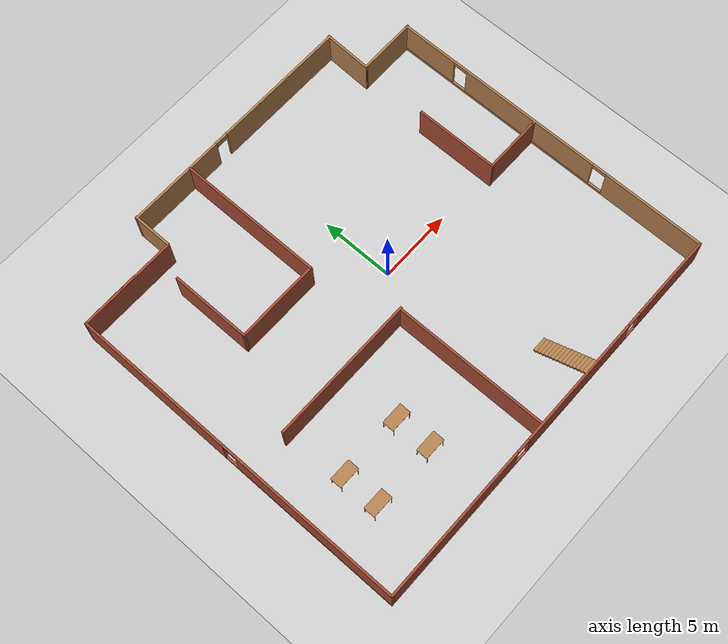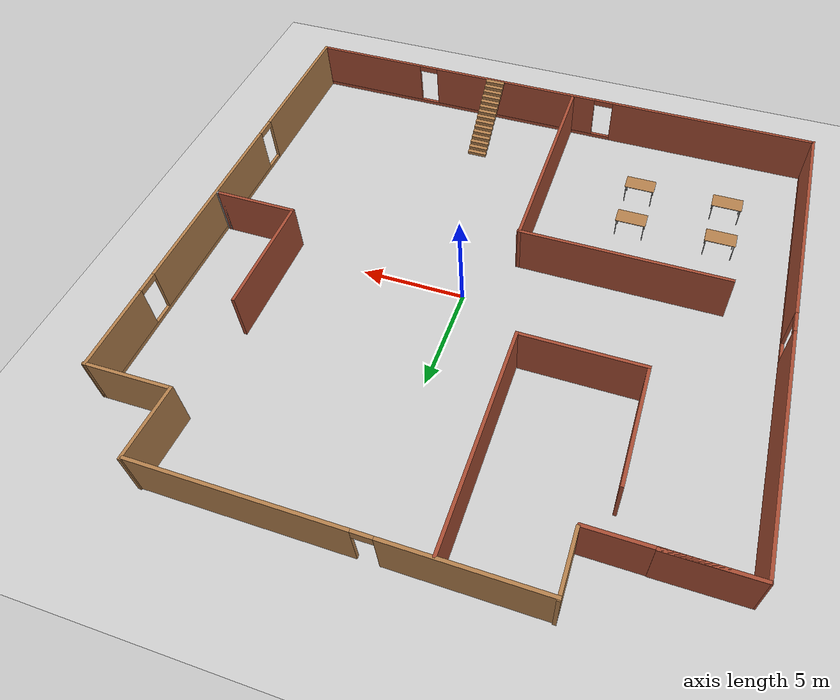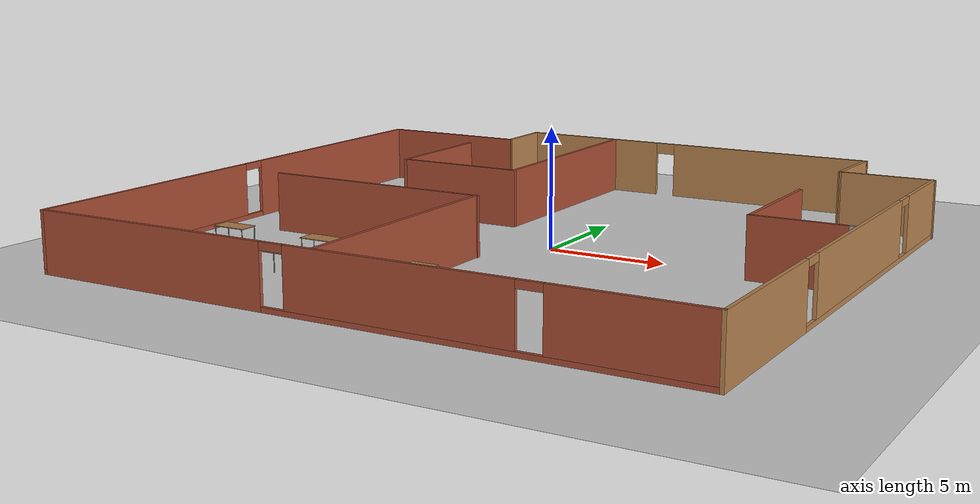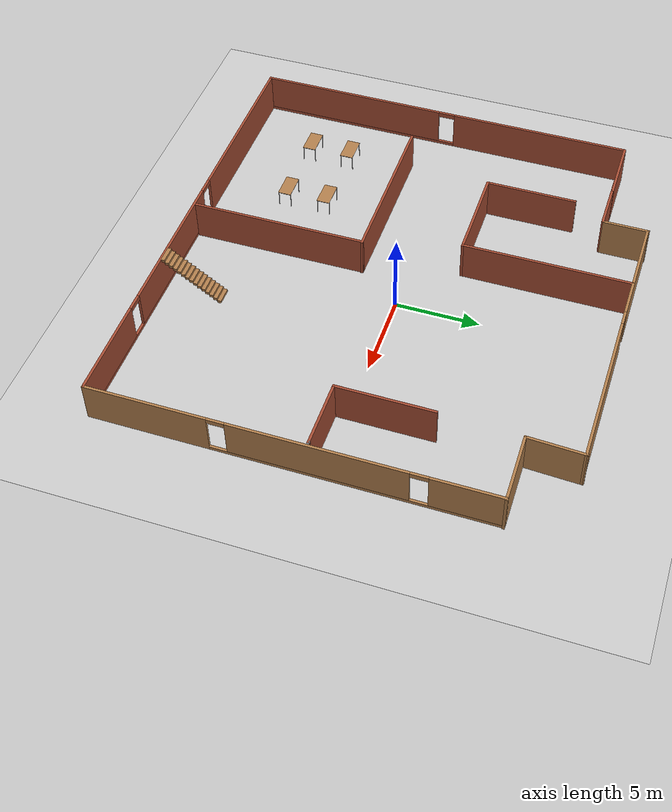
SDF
<sdf version="1.6">
 <world name="default">
  <model name="ground_plane">
   <static>1</static>
   <link name="link">
    <collision name="collision">
     <geometry><plane><normal>0 0 1</normal><size>100 100</size></plane></geometry>
     <surface>
      <contact><collide_bitmask>65535</collide_bitmask></contact>
      <friction><ode><mu>100</mu><mu2>50</mu2></ode></friction>
     </surface>
    </collision>
    <visual name="visual">
     <cast_shadows>0</cast_shadows>
     <geometry><plane><normal>0 0 1</normal><size>100 100</size></plane></geometry>
     <material>
      <script><uri>file://media/materials/scripts/gazebo.material</uri><name>Gazebo/Grey</name></script>
     </material>
    </visual>
   </link>
  </model>
  <model name="Office">
   <pose>-0.853602 -0.115514 0 0 -0 0</pose>
   <link name="Stairs_0">
    <visual name="Stairs_0_Visual_0">
     <pose>3.3493 -9.60341 0.083333 0 -0 0</pose>
     <geometry><box><size>1 0.233333 0.166667</size></box></geometry>
     <material>
      <script><uri>file://media/materials/scripts/gazebo.material</uri><name>Gazebo/Wood</name></script>
      <ambient>1 1 1 1</ambient>
     </material>
     <meta><layer>0</layer></meta>
    </visual>
    <collision name="Stairs_0_Collision_0">
     <geometry><box><size>1 0.233333 0.166667</size></box></geometry>
     <pose>3.3493 -9.60341 0.083333 0 -0 0</pose>
    </collision>
    <visual name="Stairs_0_Visual_1">
     <pose>3.3493 -9.83674 0.25 0 -0 0</pose>
     <geometry><box><size>1 0.233333 0.166667</size></box></geometry>
     <material>
      <script><uri>file://media/materials/scripts/gazebo.material</uri><name>Gazebo/Wood</name></script>
      <ambient>1 1 1 1</ambient>
     </material>
     <meta><layer>0</layer></meta>
    </visual>
    <collision name="Stairs_0_Collision_1">
     <geometry><box><size>1 0.233333 0.166667</size></box></geometry>
     <pose>3.3493 -9.83674 0.25 0 -0 0</pose>
    </collision>
    <visual name="Stairs_0_Visual_2">
     <pose>3.3493 -10.0701 0.416667 0 -0 0</pose>
     <geometry><box><size>1 0.233333 0.166667</size></box></geometry>
     <material>
      <script><uri>file://media/materials/scripts/gazebo.material</uri><name>Gazebo/Wood</name></script>
      <ambient>1 1 1 1</ambient>
     </material>
     <meta><layer>0</layer></meta>
    </visual>
    <collision name="Stairs_0_Collision_2">
     <geometry><box><size>1 0.233333 0.166667</size></box></geometry>
     <pose>3.3493 -10.0701 0.416667 0 -0 0</pose>
    </collision>
    <visual name="Stairs_0_Visual_3">
     <pose>3.3493 -10.3034 0.583333 0 -0 0</pose>
     <geometry><box><size>1 0.233333 0.166667</size></box></geometry>
     <material>
      <script><uri>file://media/materials/scripts/gazebo.material</uri><name>Gazebo/Wood</name></script>
      <ambient>1 1 1 1</ambient>
     </material>
     <meta><layer>0</layer></meta>
    </visual>
    <collision name="Stairs_0_Collision_3">
     <geometry><box><size>1 0.233333 0.166667</size></box></geometry>
     <pose>3.3493 -10.3034 0.583333 0 -0 0</pose>
    </collision>
    <visual name="Stairs_0_Visual_4">
     <pose>3.3493 -10.5367 0.75 0 -0 0</pose>
     <geometry><box><size>1 0.233333 0.166667</size></box></geometry>
     <material>
      <script><uri>file://media/materials/scripts/gazebo.material</uri><name>Gazebo/Wood</name></script>
      <ambient>1 1 1 1</ambient>
     </material>
     <meta><layer>0</layer></meta>
    </visual>
    <collision name="Stairs_0_Collision_4">
     <geometry><box><size>1 0.233333 0.166667</size></box></geometry>
     <pose>3.3493 -10.5367 0.75 0 -0 0</pose>
    </collision>
    <visual name="Stairs_0_Visual_5">
     <pose>3.3493 -10.7701 0.916667 0 -0 0</pose>
     <geometry><box><size>1 0.233333 0.166667</size></box></geometry>
     <material>
      <script><uri>file://media/materials/scripts/gazebo.material</uri><name>Gazebo/Wood</name></script>
      <ambient>1 1 1 1</ambient>
     </material>
     <meta><layer>0</layer></meta>
    </visual>
    <collision name="Stairs_0_Collision_5">
     <geometry><box><size>1 0.233333 0.166667</size></box></geometry>
     <pose>3.3493 -10.7701 0.916667 0 -0 0</pose>
    </collision>
    <visual name="Stairs_0_Visual_6">
     <pose>3.3493 -11.0034 1.08333 0 -0 0</pose>
     <geometry><box><size>1 0.233333 0.166667</size></box></geometry>
     <material>
      <script><uri>file://media/materials/scripts/gazebo.material</uri><name>Gazebo/Wood</name></script>
      <ambient>1 1 1 1</ambient>
     </material>
     <meta><layer>0</layer></meta>
    </visual>
    <collision name="Stairs_0_Collision_6">
     <geometry><box><size>1 0.233333 0.166667</size></box></geometry>
     <pose>3.3493 -11.0034 1.08333 0 -0 0</pose>
    </collision>
    <visual name="Stairs_0_Visual_7">
     <pose>3.3493 -11.2367 1.25 0 -0 0</pose>
     <geometry><box><size>1 0.233333 0.166667</size></box></geometry>
     <material>
      <script><uri>file://media/materials/scripts/gazebo.material</uri><name>Gazebo/Wood</name></script>
      <ambient>1 1 1 1</ambient>
     </material>
     <meta><layer>0</layer></meta>
    </visual>
    <collision name="Stairs_0_Collision_7">
     <geometry><box><size>1 0.233333 0.166667</size></box></geometry>
     <pose>3.3493 -11.2367 1.25 0 -0 0</pose>
    </collision>
    <visual name="Stairs_0_Visual_8">
     <pose>3.3493 -11.4701 1.41667 0 -0 0</pose>
     <geometry><box><size>1 0.233333 0.166667</size></box></geometry>
     <material>
      <script><uri>file://media/materials/scripts/gazebo.material</uri><name>Gazebo/Wood</name></script>
      <ambient>1 1 1 1</ambient>
     </material>
     <meta><layer>0</layer></meta>
    </visual>
    <collision name="Stairs_0_Collision_8">
     <geometry><box><size>1 0.233333 0.166667</size></box></geometry>
     <pose>3.3493 -11.4701 1.41667 0 -0 0</pose>
    </collision>
    <visual name="Stairs_0_Visual_9">
     <pose>3.3493 -11.7034 1.58333 0 -0 0</pose>
     <geometry><box><size>1 0.233333 0.166667</size></box></geometry>
     <material>
      <script><uri>file://media/materials/scripts/gazebo.material</uri><name>Gazebo/Wood</name></script>
      <ambient>1 1 1 1</ambient>
     </material>
     <meta><layer>0</layer></meta>
    </visual>
    <collision name="Stairs_0_Collision_9">
     <geometry><box><size>1 0.233333 0.166667</size></box></geometry>
     <pose>3.3493 -11.7034 1.58333 0 -0 0</pose>
    </collision>
    <visual name="Stairs_0_Visual_10">
     <pose>3.3493 -11.9367 1.75 0 -0 0</pose>
     <geometry><box><size>1 0.233333 0.166667</size></box></geometry>
     <material>
      <script><uri>file://media/materials/scripts/gazebo.material</uri><name>Gazebo/Wood</name></script>
      <ambient>1 1 1 1</ambient>
     </material>
     <meta><layer>0</layer></meta>
    </visual>
    <collision name="Stairs_0_Collision_10">
     <geometry><box><size>1 0.233333 0.166667</size></box></geometry>
     <pose>3.3493 -11.9367 1.75 0 -0 0</pose>
    </collision>
    <visual name="Stairs_0_Visual_11">
     <pose>3.3493 -12.1701 1.91667 0 -0 0</pose>
     <geometry><box><size>1 0.233333 0.166667</size></box></geometry>
     <material>
      <script><uri>file://media/materials/scripts/gazebo.material</uri><name>Gazebo/Wood</name></script>
      <ambient>1 1 1 1</ambient>
     </material>
     <meta><layer>0</layer></meta>
    </visual>
    <collision name="Stairs_0_Collision_11">
     <geometry><box><size>1 0.233333 0.166667</size></box></geometry>
     <pose>3.3493 -12.1701 1.91667 0 -0 0</pose>
    </collision>
    <visual name="Stairs_0_Visual_12">
     <pose>3.3493 -12.4034 2.08333 0 -0 0</pose>
     <geometry><box><size>1 0.233333 0.166667</size></box></geometry>
     <material>
      <script><uri>file://media/materials/scripts/gazebo.material</uri><name>Gazebo/Wood</name></script>
      <ambient>1 1 1 1</ambient>
     </material>
     <meta><layer>0</layer></meta>
    </visual>
    <collision name="Stairs_0_Collision_12">
     <geometry><box><size>1 0.233333 0.166667</size></box></geometry>
     <pose>3.3493 -12.4034 2.08333 0 -0 0</pose>
    </collision>
    <visual name="Stairs_0_Visual_13">
     <pose>3.3493 -12.6367 2.25 0 -0 0</pose>
     <geometry><box><size>1 0.233333 0.166667</size></box></geometry>
     <material>
      <script><uri>file://media/materials/scripts/gazebo.material</uri><name>Gazebo/Wood</name></script>
      <ambient>1 1 1 1</ambient>
     </material>
     <meta><layer>0</layer></meta>
    </visual>
    <collision name="Stairs_0_Collision_13">
     <geometry><box><size>1 0.233333 0.166667</size></box></geometry>
     <pose>3.3493 -12.6367 2.25 0 -0 0</pose>
    </collision>
    <visual name="Stairs_0_Visual_14">
     <pose>3.3493 -12.8701 2.41667 0 -0 0</pose>
     <geometry><box><size>1 0.233333 0.166667</size></box></geometry>
     <material>
      <script><uri>file://media/materials/scripts/gazebo.material</uri><name>Gazebo/Wood</name></script>
      <ambient>1 1 1 1</ambient>
     </material>
     <meta><layer>0</layer></meta>
    </visual>
    <collision name="Stairs_0_Collision_14">
     <geometry><box><size>1 0.233333 0.166667</size></box></geometry>
     <pose>3.3493 -12.8701 2.41667 0 -0 0</pose>
    </collision>
   </link>
   <link name="Wall_0">
    <pose>-13.6665 -1.34581 0 0 -0 -1.5708</pose>
    <visual name="Wall_0_Visual_0">
     <pose>-6.25709 0 1.25 0 -0 0</pose>
     <geometry><box><size>10.9858 0.15 2.5</size></box></geometry>
     <material>
      <script><uri>file://media/materials/scripts/gazebo.material</uri><name>Gazebo/Bricks</name></script>
      <ambient>0.435294 0.796078 0.67451 1</ambient>
     </material>
     <meta><layer>0</layer></meta>
    </visual>
    <collision name="Wall_0_Collision_0">
     <geometry><box><size>10.9858 0.15 2.5</size></box></geometry>
     <pose>-6.25709 0 1.25 0 -0 0</pose>
    </collision>
    <visual name="Wall_0_Visual_1">
     <pose>5.49291 0 0.1 0 -0 0</pose>
     <geometry><box><size>12.5142 0.15 0.2</size></box></geometry>
     <material>
      <script><uri>file://media/materials/scripts/gazebo.material</uri><name>Gazebo/Bricks</name></script>
      <ambient>0.435294 0.796078 0.67451 1</ambient>
     </material>
     <meta><layer>0</layer></meta>
    </visual>
    <collision name="Wall_0_Collision_1">
     <geometry><box><size>12.5142 0.15 0.2</size></box></geometry>
     <pose>5.49291 0 0.1 0 -0 0</pose>
    </collision>
    <visual name="Wall_0_Visual_2">
     <pose>5.99291 0 1.35 0 -0 0</pose>
     <geometry><box><size>11.5142 0.15 2.3</size></box></geometry>
     <material>
      <script><uri>file://media/materials/scripts/gazebo.material</uri><name>Gazebo/Bricks</name></script>
      <ambient>0.435294 0.796078 0.67451 1</ambient>
     </material>
     <meta><layer>0</layer></meta>
    </visual>
    <collision name="Wall_0_Collision_2">
     <geometry><box><size>11.5142 0.15 2.3</size></box></geometry>
     <pose>5.99291 0 1.35 0 -0 0</pose>
    </collision>
    <visual name="Wall_0_Visual_3">
     <pose>-0.264183 0 2.35 0 -0 0</pose>
     <geometry><box><size>1 0.15 0.3</size></box></geometry>
     <material>
      <script><uri>file://media/materials/scripts/gazebo.material</uri><name>Gazebo/Bricks</name></script>
      <ambient>0.435294 0.796078 0.67451 1</ambient>
     </material>
     <meta><layer>0</layer></meta>
    </visual>
    <collision name="Wall_0_Collision_3">
     <geometry><box><size>1 0.15 0.3</size></box></geometry>
     <pose>-0.264183 0 2.35 0 -0 0</pose>
    </collision>
   </link>
   <link name="Wall_1">
    <pose>-0.000233 -13.0208 0 0 -0 0</pose>
    <visual name="Wall_1_Visual_0">
     <pose>-8.46246 0 1.25 0 -0 0</pose>
     <geometry><box><size>10.4647 0.15 2.5</size></box></geometry>
     <material>
      <script><uri>file://media/materials/scripts/gazebo.material</uri><name>Gazebo/Bricks</name></script>
      <ambient>0.435294 0.796078 0.67451 1</ambient>
     </material>
     <meta><layer>0</layer></meta>
    </visual>
    <collision name="Wall_1_Collision_0">
     <geometry><box><size>10.4647 0.15 2.5</size></box></geometry>
     <pose>-8.46246 0 1.25 0 -0 0</pose>
    </collision>
    <visual name="Wall_1_Visual_1">
     <pose>5.23233 0 0.1 0 -0 0</pose>
     <geometry><box><size>16.9249 0.15 0.2</size></box></geometry>
     <material>
      <script><uri>file://media/materials/scripts/gazebo.material</uri><name>Gazebo/Bricks</name></script>
      <ambient>0.435294 0.796078 0.67451 1</ambient>
     </material>
     <meta><layer>0</layer></meta>
    </visual>
    <collision name="Wall_1_Collision_1">
     <geometry><box><size>16.9249 0.15 0.2</size></box></geometry>
     <pose>5.23233 0 0.1 0 -0 0</pose>
    </collision>
    <visual name="Wall_1_Visual_2">
     <pose>2.28696 0 1.35 0 -0 0</pose>
     <geometry><box><size>9.0342 0.15 2.3</size></box></geometry>
     <material>
      <script><uri>file://media/materials/scripts/gazebo.material</uri><name>Gazebo/Bricks</name></script>
      <ambient>0.435294 0.796078 0.67451 1</ambient>
     </material>
     <meta><layer>0</layer></meta>
    </visual>
    <collision name="Wall_1_Collision_2">
     <geometry><box><size>9.0342 0.15 2.3</size></box></geometry>
     <pose>2.28696 0 1.35 0 -0 0</pose>
    </collision>
    <visual name="Wall_1_Visual_3">
     <pose>10.7494 0 1.35 0 -0 0</pose>
     <geometry><box><size>5.89072 0.15 2.3</size></box></geometry>
     <material>
      <script><uri>file://media/materials/scripts/gazebo.material</uri><name>Gazebo/Bricks</name></script>
      <ambient>0.435294 0.796078 0.67451 1</ambient>
     </material>
     <meta><layer>0</layer></meta>
    </visual>
    <collision name="Wall_1_Collision_3">
     <geometry><box><size>5.89072 0.15 2.3</size></box></geometry>
     <pose>10.7494 0 1.35 0 -0 0</pose>
    </collision>
    <visual name="Wall_1_Visual_4">
     <pose>-2.73014 0 2.35 0 -0 0</pose>
     <geometry><box><size>1 0.15 0.3</size></box></geometry>
     <material>
      <script><uri>file://media/materials/scripts/gazebo.material</uri><name>Gazebo/Bricks</name></script>
      <ambient>0.435294 0.796078 0.67451 1</ambient>
     </material>
     <meta><layer>0</layer></meta>
    </visual>
    <collision name="Wall_1_Collision_4">
     <geometry><box><size>1 0.15 0.3</size></box></geometry>
     <pose>-2.73014 0 2.35 0 -0 0</pose>
    </collision>
    <visual name="Wall_1_Visual_5">
     <pose>7.30406 0 2.35 0 -0 0</pose>
     <geometry><box><size>1 0.15 0.3</size></box></geometry>
     <material>
      <script><uri>file://media/materials/scripts/gazebo.material</uri><name>Gazebo/Bricks</name></script>
      <ambient>0.435294 0.796078 0.67451 1</ambient>
     </material>
     <meta><layer>0</layer></meta>
    </visual>
    <collision name="Wall_1_Collision_5">
     <geometry><box><size>1 0.15 0.3</size></box></geometry>
     <pose>7.30406 0 2.35 0 -0 0</pose>
    </collision>
   </link>
   <link name="Wall_10">
    <collision name="Wall_10_Collision">
     <geometry><box><size>10.4723 0.15 2.5</size></box></geometry>
     <pose>0 0 1.25 0 -0 0</pose>
    </collision>
    <visual name="Wall_10_Visual">
     <pose>0 0 1.25 0 -0 0</pose>
     <geometry><box><size>10.4723 0.15 2.5</size></box></geometry>
     <material>
      <script><uri>file://media/materials/scripts/gazebo.material</uri><name>Gazebo/Bricks</name></script>
      <ambient>1 1 1 1</ambient>
     </material>
     <meta><layer>0</layer></meta>
    </visual>
    <pose>-1.06028 -7.69746 0 0 -0 -1.56629</pose>
   </link>
   <link name="Wall_13">
    <collision name="Wall_13_Collision">
     <geometry><box><size>3.95311 0.15 2.5</size></box></geometry>
     <pose>0 0 1.25 0 -0 0</pose>
    </collision>
    <visual name="Wall_13_Visual">
     <pose>0 0 1.25 0 -0 0</pose>
     <geometry><box><size>3.95311 0.15 2.5</size></box></geometry>
     <material>
      <script><uri>file://media/materials/scripts/gazebo.material</uri><name>Gazebo/Bricks</name></script>
      <ambient>1 1 1 1</ambient>
     </material>
     <meta><layer>0</layer></meta>
    </visual>
    <pose>-11.765 10.3398 0 0 -0 -3.13603</pose>
   </link>
   <link name="Wall_14">
    <collision name="Wall_14_Collision">
     <geometry><box><size>6.75 0.15 2.5</size></box></geometry>
     <pose>0 0 1.25 0 -0 0</pose>
    </collision>
    <visual name="Wall_14_Visual">
     <pose>0 0 1.25 0 -0 0</pose>
     <geometry><box><size>6.75 0.15 2.5</size></box></geometry>
     <material>
      <script><uri>file://media/materials/scripts/gazebo.material</uri><name>Gazebo/Bricks</name></script>
      <ambient>1 1 1 1</ambient>
     </material>
     <meta><layer>0</layer></meta>
    </visual>
    <pose>-10.3665 10.3292 0 0 -0 0</pose>
   </link>
   <link name="Wall_16">
    <collision name="Wall_16_Collision">
     <geometry><box><size>5.75 0.15 2.5</size></box></geometry>
     <pose>0 0 1.25 0 -0 0</pose>
    </collision>
    <visual name="Wall_16_Visual">
     <pose>0 0 1.25 0 -0 0</pose>
     <geometry><box><size>5.75 0.15 2.5</size></box></geometry>
     <material>
      <script><uri>file://media/materials/scripts/gazebo.material</uri><name>Gazebo/Bricks</name></script>
      <ambient>1 1 1 1</ambient>
     </material>
     <meta><layer>0</layer></meta>
    </visual>
    <pose>9.53698 2.24663 0 0 -0 -1.5708</pose>
   </link>
   <link name="Wall_17">
    <collision name="Wall_17_Collision">
     <geometry><box><size>4 0.15 2.5</size></box></geometry>
     <pose>0 0 1.25 0 -0 0</pose>
    </collision>
    <visual name="Wall_17_Visual">
     <pose>0 0 1.25 0 -0 0</pose>
     <geometry><box><size>4 0.15 2.5</size></box></geometry>
     <material>
      <script><uri>file://media/materials/scripts/gazebo.material</uri><name>Gazebo/Bricks</name></script>
      <ambient>1 1 1 1</ambient>
     </material>
     <meta><layer>0</layer></meta>
    </visual>
    <pose>11.462 -0.55337 0 0 -0 0</pose>
   </link>
   <link name="Wall_18">
    <collision name="Wall_18_Collision">
     <geometry><box><size>0.25 0.15 2.5</size></box></geometry>
     <pose>0 0 1.25 0 -0 0</pose>
    </collision>
    <visual name="Wall_18_Visual">
     <pose>0 0 1.25 0 -0 0</pose>
     <geometry><box><size>0.25 0.15 2.5</size></box></geometry>
     <material>
      <script><uri>file://media/materials/scripts/gazebo.material</uri><name>Gazebo/Grey</name></script>
      <ambient>1 1 1 1</ambient>
     </material>
     <meta><layer>0</layer></meta>
    </visual>
    <pose>13.437 -0.55337 0 0 -0 0</pose>
   </link>
   <link name="Wall_2">
    <pose>13.6196 -1.59581 0 0 -0 1.5708</pose>
    <visual name="Wall_2_Visual_0">
     <pose>-7.98251 0 1.25 0 -0 0</pose>
     <geometry><box><size>7.03499 0.15 2.5</size></box></geometry>
     <material>
      <script><uri>file://media/materials/scripts/gazebo.material</uri><name>Gazebo/Wood</name></script>
      <ambient>1 1 1 1</ambient>
     </material>
     <meta><layer>0</layer></meta>
    </visual>
    <collision name="Wall_2_Collision_0">
     <geometry><box><size>7.03499 0.15 2.5</size></box></geometry>
     <pose>-7.98251 0 1.25 0 -0 0</pose>
    </collision>
    <visual name="Wall_2_Visual_1">
     <pose>3.51749 0 0.1 0 -0 0</pose>
     <geometry><box><size>15.965 0.15 0.2</size></box></geometry>
     <material>
      <script><uri>file://media/materials/scripts/gazebo.material</uri><name>Gazebo/Wood</name></script>
      <ambient>1 1 1 1</ambient>
     </material>
     <meta><layer>0</layer></meta>
    </visual>
    <collision name="Wall_2_Collision_1">
     <geometry><box><size>15.965 0.15 0.2</size></box></geometry>
     <pose>3.51749 0 0.1 0 -0 0</pose>
    </collision>
    <visual name="Wall_2_Visual_2">
     <pose>1.50191 0 1.35 0 -0 0</pose>
     <geometry><box><size>9.93385 0.15 2.3</size></box></geometry>
     <material>
      <script><uri>file://media/materials/scripts/gazebo.material</uri><name>Gazebo/Wood</name></script>
      <ambient>1 1 1 1</ambient>
     </material>
     <meta><layer>0</layer></meta>
    </visual>
    <collision name="Wall_2_Collision_2">
     <geometry><box><size>9.93385 0.15 2.3</size></box></geometry>
     <pose>1.50191 0 1.35 0 -0 0</pose>
    </collision>
    <visual name="Wall_2_Visual_3">
     <pose>9.48442 0 1.35 0 -0 0</pose>
     <geometry><box><size>4.03116 0.15 2.3</size></box></geometry>
     <material>
      <script><uri>file://media/materials/scripts/gazebo.material</uri><name>Gazebo/Wood</name></script>
      <ambient>1 1 1 1</ambient>
     </material>
     <meta><layer>0</layer></meta>
    </visual>
    <collision name="Wall_2_Collision_3">
     <geometry><box><size>4.03116 0.15 2.3</size></box></geometry>
     <pose>9.48442 0 1.35 0 -0 0</pose>
    </collision>
    <visual name="Wall_2_Visual_4">
     <pose>-3.96501 0 2.35 0 -0 0</pose>
     <geometry><box><size>1 0.15 0.3</size></box></geometry>
     <material>
      <script><uri>file://media/materials/scripts/gazebo.material</uri><name>Gazebo/Wood</name></script>
      <ambient>1 1 1 1</ambient>
     </material>
     <meta><layer>0</layer></meta>
    </visual>
    <collision name="Wall_2_Collision_4">
     <geometry><box><size>1 0.15 0.3</size></box></geometry>
     <pose>-3.96501 0 2.35 0 -0 0</pose>
    </collision>
    <visual name="Wall_2_Visual_5">
     <pose>6.96884 0 2.35 0 -0 0</pose>
     <geometry><box><size>1 0.15 0.3</size></box></geometry>
     <material>
      <script><uri>file://media/materials/scripts/gazebo.material</uri><name>Gazebo/Wood</name></script>
      <ambient>1 1 1 1</ambient>
     </material>
     <meta><layer>0</layer></meta>
    </visual>
    <collision name="Wall_2_Collision_5">
     <geometry><box><size>1 0.15 0.3</size></box></geometry>
     <pose>6.96884 0 2.35 0 -0 0</pose>
    </collision>
   </link>
   <link name="Wall_20">
    <collision name="Wall_20_Collision">
     <geometry><box><size>10 0.15 2.5</size></box></geometry>
     <pose>0 0 1.25 0 -0 0</pose>
    </collision>
    <visual name="Wall_20_Visual">
     <pose>0 0 1.25 0 -0 0</pose>
     <geometry><box><size>10 0.15 2.5</size></box></geometry>
     <material>
      <script><uri>file://media/materials/scripts/gazebo.material</uri><name>Gazebo/Bricks</name></script>
      <ambient>1 1 1 1</ambient>
     </material>
     <meta><layer>0</layer></meta>
    </visual>
    <pose>-2.60576 7.98417 0 0 -0 -1.5708</pose>
   </link>
   <link name="Wall_21">
    <collision name="Wall_21_Collision">
     <geometry><box><size>5.75 0.15 2.5</size></box></geometry>
     <pose>0 0 1.25 0 -0 0</pose>
    </collision>
    <visual name="Wall_21_Visual">
     <pose>0 0 1.25 0 -0 0</pose>
     <geometry><box><size>5.75 0.15 2.5</size></box></geometry>
     <material>
      <script><uri>file://media/materials/scripts/gazebo.material</uri><name>Gazebo/Bricks</name></script>
      <ambient>1 1 1 1</ambient>
     </material>
     <meta><layer>0</layer></meta>
    </visual>
    <pose>-5.40576 3.05917 0 0 -0 3.14159</pose>
   </link>
   <link name="Wall_22">
    <collision name="Wall_22_Collision">
     <geometry><box><size>5.5 0.15 2.5</size></box></geometry>
     <pose>0 0 1.25 0 -0 0</pose>
    </collision>
    <visual name="Wall_22_Visual">
     <pose>0 0 1.25 0 -0 0</pose>
     <geometry><box><size>5.5 0.15 2.5</size></box></geometry>
     <material>
      <script><uri>file://media/materials/scripts/gazebo.material</uri><name>Gazebo/Bricks</name></script>
      <ambient>1 1 1 1</ambient>
     </material>
     <meta><layer>0</layer></meta>
    </visual>
    <pose>-8.20576 5.73417 0 0 -0 1.5708</pose>
   </link>
   <link name="Wall_3">
    <collision name="Wall_3_Collision">
     <geometry><box><size>4.08454 0.15 2.5</size></box></geometry>
     <pose>0 0 1.25 0 -0 0</pose>
    </collision>
    <visual name="Wall_3_Visual">
     <pose>0 0 1.25 0 -0 0</pose>
     <geometry><box><size>4.08454 0.15 2.5</size></box></geometry>
     <material>
      <script><uri>file://media/materials/scripts/gazebo.material</uri><name>Gazebo/Wood</name></script>
      <ambient>1 1 1 1</ambient>
     </material>
     <meta><layer>0</layer></meta>
    </visual>
    <pose>11.6989 9.80593 0 0 -0 -3.12977</pose>
   </link>
   <link name="Wall_4">
    <collision name="Wall_4_Collision">
     <geometry><box><size>3.38799 0.15 2.5</size></box></geometry>
     <pose>0 0 1.25 0 -0 0</pose>
    </collision>
    <visual name="Wall_4_Visual">
     <pose>0 0 1.25 0 -0 0</pose>
     <geometry><box><size>3.38799 0.15 2.5</size></box></geometry>
     <material>
      <script><uri>file://media/materials/scripts/gazebo.material</uri><name>Gazebo/Wood</name></script>
      <ambient>1 1 1 1</ambient>
     </material>
     <meta><layer>0</layer></meta>
    </visual>
    <pose>9.75508 11.4002 0 0 -0 1.52768</pose>
   </link>
   <link name="Wall_5">
    <pose>1.39986 12.9711 0 0 -0 3.14159</pose>
    <visual name="Wall_5_Visual_0">
     <pose>-3.82584 0 1.25 0 -0 0</pose>
     <geometry><box><size>9.34832 0.15 2.5</size></box></geometry>
     <material>
      <script><uri>file://media/materials/scripts/gazebo.material</uri><name>Gazebo/Wood</name></script>
      <ambient>1 1 1 1</ambient>
     </material>
     <meta><layer>0</layer></meta>
    </visual>
    <collision name="Wall_5_Collision_0">
     <geometry><box><size>9.34832 0.15 2.5</size></box></geometry>
     <pose>-3.82584 0 1.25 0 -0 0</pose>
    </collision>
    <visual name="Wall_5_Visual_1">
     <pose>5.12416 0 1.25 0 -0 0</pose>
     <geometry><box><size>6.75168 0.15 2.5</size></box></geometry>
     <material>
      <script><uri>file://media/materials/scripts/gazebo.material</uri><name>Gazebo/Wood</name></script>
      <ambient>1 1 1 1</ambient>
     </material>
     <meta><layer>0</layer></meta>
    </visual>
    <collision name="Wall_5_Collision_1">
     <geometry><box><size>6.75168 0.15 2.5</size></box></geometry>
     <pose>5.12416 0 1.25 0 -0 0</pose>
    </collision>
    <visual name="Wall_5_Visual_2">
     <pose>1.29832 0 2.25 0 -0 0</pose>
     <geometry><box><size>0.9 0.15 0.5</size></box></geometry>
     <material>
      <script><uri>file://media/materials/scripts/gazebo.material</uri><name>Gazebo/Wood</name></script>
      <ambient>1 1 1 1</ambient>
     </material>
     <meta><layer>0</layer></meta>
    </visual>
    <collision name="Wall_5_Collision_2">
     <geometry><box><size>0.9 0.15 0.5</size></box></geometry>
     <pose>1.29832 0 2.25 0 -0 0</pose>
    </collision>
   </link>
   <link name="Wall_6">
    <collision name="Wall_6_Collision">
     <geometry><box><size>2.75 0.15 2.5</size></box></geometry>
     <pose>0 0 1.25 0 -0 0</pose>
    </collision>
    <visual name="Wall_6_Visual">
     <pose>0 0 1.25 0 -0 0</pose>
     <geometry><box><size>2.75 0.15 2.5</size></box></geometry>
     <material>
      <script><uri>file://media/materials/scripts/gazebo.material</uri><name>Gazebo/Wood</name></script>
      <ambient>1 1 1 1</ambient>
     </material>
     <meta><layer>0</layer></meta>
    </visual>
    <pose>-7.02514 11.7176 0 0 -0 -1.5708</pose>
   </link>
   <link name="Wall_9">
    <collision name="Wall_9_Collision">
     <geometry><box><size>10 0.15 2.5</size></box></geometry>
     <pose>0 0 1.25 0 -0 0</pose>
    </collision>
    <visual name="Wall_9_Visual">
     <pose>0 0 1.25 0 -0 0</pose>
     <geometry><box><size>10 0.15 2.5</size></box></geometry>
     <material>
      <script><uri>file://media/materials/scripts/gazebo.material</uri><name>Gazebo/Bricks</name></script>
      <ambient>1 1 1 1</ambient>
     </material>
     <meta><layer>0</layer></meta>
    </visual>
    <pose>-5.96202 -2.53677 0 0 -0 0</pose>
   </link>
   <static>1</static>
  </model>
  <model name="table_clone_1">
   <static>1</static>
   <link name="link">
    <collision name="surface">
     <pose>0 0 1 0 -0 0</pose>
     <geometry><box><size>1.5 0.8 0.03</size></box></geometry>
     <surface><friction><ode><mu>0.6</mu><mu2>0.6</mu2></ode></friction></surface>
    </collision>
    <visual name="visual1">
     <pose>0 0 1 0 -0 0</pose>
     <geometry><box><size>1.5 0.8 0.03</size></box></geometry>
     <material>
      <script><uri>file://media/materials/scripts/gazebo.material</uri><name>Gazebo/Wood</name></script>
     </material>
    </visual>
    <collision name="front_left_leg">
     <pose>0.68 0.38 0.5 0 -0 0</pose>
     <geometry><cylinder><radius>0.02</radius><length>1</length></cylinder></geometry>
    </collision>
    <visual name="front_left_leg">
     <pose>0.68 0.38 0.5 0 -0 0</pose>
     <geometry><cylinder><radius>0.02</radius><length>1</length></cylinder></geometry>
     <material>
      <script><uri>file://media/materials/scripts/gazebo.material</uri><name>Gazebo/Grey</name></script>
     </material>
    </visual>
    <collision name="front_right_leg">
     <pose>0.68 -0.38 0.5 0 -0 0</pose>
     <geometry><cylinder><radius>0.02</radius><length>1</length></cylinder></geometry>
    </collision>
    <visual name="front_right_leg">
     <pose>0.68 -0.38 0.5 0 -0 0</pose>
     <geometry><cylinder><radius>0.02</radius><length>1</length></cylinder></geometry>
     <material>
      <script><uri>file://media/materials/scripts/gazebo.material</uri><name>Gazebo/Grey</name></script>
     </material>
    </visual>
    <collision name="back_right_leg">
     <pose>-0.68 -0.38 0.5 0 -0 0</pose>
     <geometry><cylinder><radius>0.02</radius><length>1</length></cylinder></geometry>
    </collision>
    <visual name="back_right_leg">
     <pose>-0.68 -0.38 0.5 0 -0 0</pose>
     <geometry><cylinder><radius>0.02</radius><length>1</length></cylinder></geometry>
     <material>
      <script><uri>file://media/materials/scripts/gazebo.material</uri><name>Gazebo/Grey</name></script>
     </material>
    </visual>
    <collision name="back_left_leg">
     <pose>-0.68 0.38 0.5 0 -0 0</pose>
     <geometry><cylinder><radius>0.02</radius><length>1</length></cylinder></geometry>
    </collision>
    <visual name="back_left_leg">
     <pose>-0.68 0.38 0.5 0 -0 0</pose>
     <geometry><cylinder><radius>0.02</radius><length>1</length></cylinder></geometry>
     <material>
      <script><uri>file://media/materials/scripts/gazebo.material</uri><name>Gazebo/Grey</name></script>
     </material>
    </visual>
   </link>
   <pose>-6.61985 -6.50895 0 0 -0 0</pose>
  </model>
  <model name="table_clone_2">
   <static>1</static>
   <link name="link">
    <collision name="surface">
     <pose>0 0 1 0 -0 0</pose>
     <geometry><box><size>1.5 0.8 0.03</size></box></geometry>
     <surface><friction><ode><mu>0.6</mu><mu2>0.6</mu2></ode></friction></surface>
    </collision>
    <visual name="visual1">
     <pose>0 0 1 0 -0 0</pose>
     <geometry><box><size>1.5 0.8 0.03</size></box></geometry>
     <material>
      <script><uri>file://media/materials/scripts/gazebo.material</uri><name>Gazebo/Wood</name></script>
     </material>
    </visual>
    <collision name="front_left_leg">
     <pose>0.68 0.38 0.5 0 -0 0</pose>
     <geometry><cylinder><radius>0.02</radius><length>1</length></cylinder></geometry>
    </collision>
    <visual name="front_left_leg">
     <pose>0.68 0.38 0.5 0 -0 0</pose>
     <geometry><cylinder><radius>0.02</radius><length>1</length></cylinder></geometry>
     <material>
      <script><uri>file://media/materials/scripts/gazebo.material</uri><name>Gazebo/Grey</name></script>
     </material>
    </visual>
    <collision name="front_right_leg">
     <pose>0.68 -0.38 0.5 0 -0 0</pose>
     <geometry><cylinder><radius>0.02</radius><length>1</length></cylinder></geometry>
    </collision>
    <visual name="front_right_leg">
     <pose>0.68 -0.38 0.5 0 -0 0</pose>
     <geometry><cylinder><radius>0.02</radius><length>1</length></cylinder></geometry>
     <material>
      <script><uri>file://media/materials/scripts/gazebo.material</uri><name>Gazebo/Grey</name></script>
     </material>
    </visual>
    <collision name="back_right_leg">
     <pose>-0.68 -0.38 0.5 0 -0 0</pose>
     <geometry><cylinder><radius>0.02</radius><length>1</length></cylinder></geometry>
    </collision>
    <visual name="back_right_leg">
     <pose>-0.68 -0.38 0.5 0 -0 0</pose>
     <geometry><cylinder><radius>0.02</radius><length>1</length></cylinder></geometry>
     <material>
      <script><uri>file://media/materials/scripts/gazebo.material</uri><name>Gazebo/Grey</name></script>
     </material>
    </visual>
    <collision name="back_left_leg">
     <pose>-0.68 0.38 0.5 0 -0 0</pose>
     <geometry><cylinder><radius>0.02</radius><length>1</length></cylinder></geometry>
    </collision>
    <visual name="back_left_leg">
     <pose>-0.68 0.38 0.5 0 -0 0</pose>
     <geometry><cylinder><radius>0.02</radius><length>1</length></cylinder></geometry>
     <material>
      <script><uri>file://media/materials/scripts/gazebo.material</uri><name>Gazebo/Grey</name></script>
     </material>
    </visual>
   </link>
   <pose>-6.58542 -9 0 0 -0 0</pose>
  </model>
  <model name="table_clone_3">
   <static>1</static>
   <link name="link">
    <collision name="surface">
     <pose>0 0 1 0 -0 0</pose>
     <geometry><box><size>1.5 0.8 0.03</size></box></geometry>
     <surface><friction><ode><mu>0.6</mu><mu2>0.6</mu2></ode></friction></surface>
    </collision>
    <visual name="visual1">
     <pose>0 0 1 0 -0 0</pose>
     <geometry><box><size>1.5 0.8 0.03</size></box></geometry>
     <material>
      <script><uri>file://media/materials/scripts/gazebo.material</uri><name>Gazebo/Wood</name></script>
     </material>
    </visual>
    <collision name="front_left_leg">
     <pose>0.68 0.38 0.5 0 -0 0</pose>
     <geometry><cylinder><radius>0.02</radius><length>1</length></cylinder></geometry>
    </collision>
    <visual name="front_left_leg">
     <pose>0.68 0.38 0.5 0 -0 0</pose>
     <geometry><cylinder><radius>0.02</radius><length>1</length></cylinder></geometry>
     <material>
      <script><uri>file://media/materials/scripts/gazebo.material</uri><name>Gazebo/Grey</name></script>
     </material>
    </visual>
    <collision name="front_right_leg">
     <pose>0.68 -0.38 0.5 0 -0 0</pose>
     <geometry><cylinder><radius>0.02</radius><length>1</length></cylinder></geometry>
    </collision>
    <visual name="front_right_leg">
     <pose>0.68 -0.38 0.5 0 -0 0</pose>
     <geometry><cylinder><radius>0.02</radius><length>1</length></cylinder></geometry>
     <material>
      <script><uri>file://media/materials/scripts/gazebo.material</uri><name>Gazebo/Grey</name></script>
     </material>
    </visual>
    <collision name="back_right_leg">
     <pose>-0.68 -0.38 0.5 0 -0 0</pose>
     <geometry><cylinder><radius>0.02</radius><length>1</length></cylinder></geometry>
    </collision>
    <visual name="back_right_leg">
     <pose>-0.68 -0.38 0.5 0 -0 0</pose>
     <geometry><cylinder><radius>0.02</radius><length>1</length></cylinder></geometry>
     <material>
      <script><uri>file://media/materials/scripts/gazebo.material</uri><name>Gazebo/Grey</name></script>
     </material>
    </visual>
    <collision name="back_left_leg">
     <pose>-0.68 0.38 0.5 0 -0 0</pose>
     <geometry><cylinder><radius>0.02</radius><length>1</length></cylinder></geometry>
    </collision>
    <visual name="back_left_leg">
     <pose>-0.68 0.38 0.5 0 -0 0</pose>
     <geometry><cylinder><radius>0.02</radius><length>1</length></cylinder></geometry>
     <material>
      <script><uri>file://media/materials/scripts/gazebo.material</uri><name>Gazebo/Grey</name></script>
     </material>
    </visual>
   </link>
   <pose>-11 -9 0 0 -0 0</pose>
  </model>
  <model name="table_clone_4">
   <static>1</static>
   <link name="link">
    <collision name="surface">
     <pose>0 0 1 0 -0 0</pose>
     <geometry><box><size>1.5 0.8 0.03</size></box></geometry>
     <surface><friction><ode><mu>0.6</mu><mu2>0.6</mu2></ode></friction></surface>
    </collision>
    <visual name="visual1">
     <pose>0 0 1 0 -0 0</pose>
     <geometry><box><size>1.5 0.8 0.03</size></box></geometry>
     <material>
      <script><uri>file://media/materials/scripts/gazebo.material</uri><name>Gazebo/Wood</name></script>
     </material>
    </visual>
    <collision name="front_left_leg">
     <pose>0.68 0.38 0.5 0 -0 0</pose>
     <geometry><cylinder><radius>0.02</radius><length>1</length></cylinder></geometry>
    </collision>
    <visual name="front_left_leg">
     <pose>0.68 0.38 0.5 0 -0 0</pose>
     <geometry><cylinder><radius>0.02</radius><length>1</length></cylinder></geometry>
     <material>
      <script><uri>file://media/materials/scripts/gazebo.material</uri><name>Gazebo/Grey</name></script>
     </material>
    </visual>
    <collision name="front_right_leg">
     <pose>0.68 -0.38 0.5 0 -0 0</pose>
     <geometry><cylinder><radius>0.02</radius><length>1</length></cylinder></geometry>
    </collision>
    <visual name="front_right_leg">
     <pose>0.68 -0.38 0.5 0 -0 0</pose>
     <geometry><cylinder><radius>0.02</radius><length>1</length></cylinder></geometry>
     <material>
      <script><uri>file://media/materials/scripts/gazebo.material</uri><name>Gazebo/Grey</name></script>
     </material>
    </visual>
    <collision name="back_right_leg">
     <pose>-0.68 -0.38 0.5 0 -0 0</pose>
     <geometry><cylinder><radius>0.02</radius><length>1</length></cylinder></geometry>
    </collision>
    <visual name="back_right_leg">
     <pose>-0.68 -0.38 0.5 0 -0 0</pose>
     <geometry><cylinder><radius>0.02</radius><length>1</length></cylinder></geometry>
     <material>
      <script><uri>file://media/materials/scripts/gazebo.material</uri><name>Gazebo/Grey</name></script>
     </material>
    </visual>
    <collision name="back_left_leg">
     <pose>-0.68 0.38 0.5 0 -0 0</pose>
     <geometry><cylinder><radius>0.02</radius><length>1</length></cylinder></geometry>
    </collision>
    <visual name="back_left_leg">
     <pose>-0.68 0.38 0.5 0 -0 0</pose>
     <geometry><cylinder><radius>0.02</radius><length>1</length></cylinder></geometry>
     <material>
      <script><uri>file://media/materials/scripts/gazebo.material</uri><name>Gazebo/Grey</name></script>
     </material>
    </visual>
   </link>
   <pose>-11 -6.50895 0 0 -0 0</pose>
  </model>
 </world>
</sdf>
